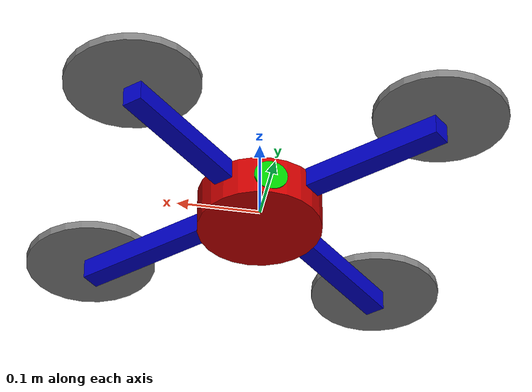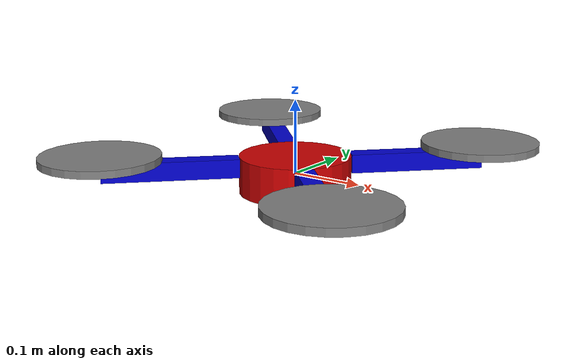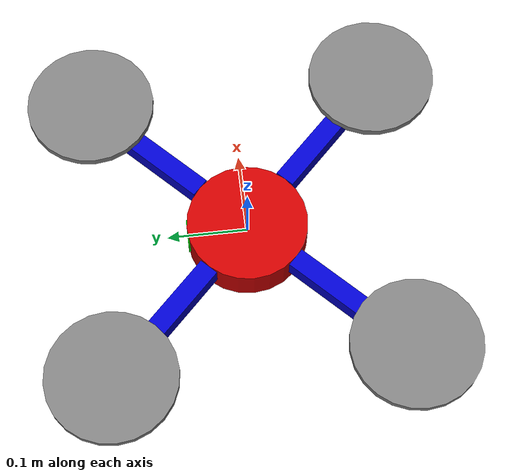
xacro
<?xml version="1.0"?>
<robot name="drone" xmlns:xacro="http://ros.org/wiki/xacro" xmlns:drake="http://mit.edu">

  <!-- File Conventions
    - mass (kg)
    - length (m)
    - inertia (kgm^2)
    -
  -->

  <!-- TO DO
    - update dimensions
    -
  -->

  <!-- #region Xacro Definitions -->
  <xacro:property name="pi" value="3.141592653589793"/>
  <xacro:property name="zero_origin" value = "0.0 0.0 0.0"/>
  <xacro:property name="zero_rpy" value = "0.0 0.0 0.0"/>

  <xacro:property name="base_radius" value = "${0.15/2}"/>
  <xacro:property name="base_length" value = "0.05"/>
  <xacro:property name="base_origin" value = "${zero_origin}"/>
  <xacro:property name="base_mass" value = "0.5"/>
  <xacro:property name="base_ixx" value = "${(base_mass*base_radius**2)/4 + (base_mass*base_length**2)/12}"/>
  <xacro:property name="base_iyy" value = "${(base_mass*base_radius**2)/4 + (base_mass*base_length**2)/12}"/>
  <xacro:property name="base_izz" value = "${(base_mass*base_radius**2)/2}"/>
  <xacro:property name="base_ixy" value = "0.0"/>
  <xacro:property name="base_ixz" value = "0.0"/>
  <xacro:property name="base_iyz" value = "0.0"/>

  <xacro:property name="arm_xsize" value = "${base_length/2}"/>
  <xacro:property name="arm_ysize" value = "${base_length/2}"/>
  <xacro:property name="arm_zsize" value = "0.18"/>
  <xacro:property name="arm_origin" value = "0.0 0.0 ${arm_zsize/2}"/>
  <xacro:property name="arm_mass" value = "0.05"/>
  <xacro:property name="arm_ixx" value = "${(arm_mass*(arm_ysize**2+arm_zsize**2))/12 + arm_mass*(arm_zsize/2)**2}"/>
  <xacro:property name="arm_iyy" value = "${(arm_mass*(arm_xsize**2+arm_zsize**2))/12 + arm_mass*(arm_zsize/2)**2}"/>
  <xacro:property name="arm_izz" value = "${(arm_mass*(arm_xsize**2+arm_ysize**2))/12}"/>
  <xacro:property name="arm_ixy" value = "0.0"/>
  <xacro:property name="arm_ixz" value = "0.0"/>
  <xacro:property name="arm_iyz" value = "0.0"/>
  <xacro:property name="arm_joint_zorigin" value = "${base_length/2-arm_ysize/2}"/>

  <xacro:property name="prop_radius" value = "0.08"/>
  <xacro:property name="prop_length" value = "0.01"/>
  <xacro:property name="prop_origin" value = "0.0 0.0 ${prop_length/2}"/>
  <xacro:property name="prop_mass" value = "0.001"/>
  <xacro:property name="prop_ixx" value = "${(prop_mass*prop_radius**2)/4 + (prop_mass*prop_length**2)/3}"/>
  <xacro:property name="prop_iyy" value = "${(prop_mass*prop_radius**2)/4 + (prop_mass*prop_length**2)/3}"/>
  <xacro:property name="prop_izz" value = "${(prop_mass*prop_radius**2)/2}"/>
  <xacro:property name="prop_ixy" value = "0.0"/>
  <xacro:property name="prop_ixz" value = "0.0"/>
  <xacro:property name="prop_iyz" value = "0.0"/>
  <xacro:property name="prop_joint_origin" value = "0.0 ${-arm_ysize/2} ${arm_zsize}"/>
  <xacro:property name="prop_joint_rpy" value = "${pi/2} 0.0 0.0"/>

  <xacro:property name="camera_radius" value = "0.02"/>
  <xacro:property name="camera_length" value = "0.01"/>
  <xacro:property name="camera_origin" value = "0.0 0.0 ${-camera_length/2}"/>
  <xacro:property name="camera_mass" value = "0.0"/>
  <xacro:property name="camera_ixx" value = "${(camera_mass*camera_radius**2)/4 + (camera_mass*camera_length**2)/12}"/>
  <xacro:property name="camera_iyy" value = "${(camera_mass*camera_radius**2)/4 + (camera_mass*camera_length**2)/12}"/>
  <xacro:property name="camera_izz" value = "${(camera_mass*camera_radius**2)/2}"/>
  <xacro:property name="camera_ixy" value = "0.0"/>
  <xacro:property name="camera_ixz" value = "0.0"/>
  <xacro:property name="camera_iyz" value = "0.0"/>
  <xacro:property name="camera_joint_origin" value = "0.0 ${base_radius} 0.0"/>
  <xacro:property name="camera_joint_rpy" value = "${-pi/2} 0.0 0.0"/>
  <!-- #endregion -->

  <!-- #region Material Definitions -->
  <material name="gray">
    <color rgba="0.5 0.5 0.5 1.0"/>
  </material>
  <material name="red">
    <color rgba="0.8 0.0 0.0 1.0"/>
  </material>
  <material name="green">
    <color rgba="0.0 0.8 0.0 1.0"/>
  </material>
  <material name="blue">
    <color rgba="0.0 0.0 0.8 1.0"/>
  </material>
  <!-- #endregion -->

  <!-- #region Drone Base -->
  <link name="drone_base">
    <inertial>
      <origin xyz="${zero_origin}" rpy="${zero_rpy}"/>
      <mass value="${base_mass}"/>
      <inertia ixx="${base_ixx}" ixy="${base_ixy}" ixz="${base_ixz}" iyy="${base_iyy}" iyz="${base_iyz}" izz="${base_izz}"/>
    </inertial>
    <visual>
      <origin xyz="${zero_origin}" rpy="${zero_rpy}"/>
      <geometry>
        <cylinder radius="${base_radius}" length="${base_length}"/>
      </geometry>
      <material name="red"/>
    </visual>
    <collision>
      <origin xyz="${zero_origin}" rpy="${zero_rpy}"/>
      <geometry>
        <cylinder radius="${base_radius}" length="${base_length}"/>
      </geometry>
    </collision>
  </link>
  <!-- #endregion -->

  <!-- #region Drone Arms -->
  <link name="drone_arm_1">
    <inertial>
      <origin xyz="${arm_origin}" rpy="${zero_rpy}"/>
      <mass value="${arm_mass}"/>
      <inertia ixx="${arm_ixx}" ixy="${arm_ixy}" ixz="${arm_ixz}" iyy="${arm_iyy}" iyz="${arm_iyz}" izz="${arm_izz}"/>
    </inertial>
    <visual>
      <origin xyz="${arm_origin}" rpy="${zero_rpy}"/>
      <geometry>
        <box size="${arm_xsize} ${arm_ysize} ${arm_zsize}"/>
      </geometry>
      <material name="blue"/>
    </visual>
    <collision>
      <origin xyz="${arm_origin}" rpy="${zero_rpy}"/>
      <geometry>
        <box size="${arm_xsize} ${arm_ysize} ${arm_zsize}"/>
      </geometry>
    </collision>
  </link>

  <link name="drone_arm_2">
    <inertial>
      <origin xyz="${arm_origin}" rpy="${zero_rpy}"/>
      <mass value="${arm_mass}"/>
      <inertia ixx="${arm_ixx}" ixy="${arm_ixy}" ixz="${arm_ixz}" iyy="${arm_iyy}" iyz="${arm_iyz}" izz="${arm_izz}"/>
    </inertial>
    <visual>
      <origin xyz="${arm_origin}" rpy="${zero_rpy}"/>
      <geometry>
        <box size="${arm_xsize} ${arm_ysize} ${arm_zsize}"/>
      </geometry>
      <material name="blue"/>
    </visual>
    <collision>
      <origin xyz="${arm_origin}" rpy="${zero_rpy}"/>
      <geometry>
        <box size="${arm_xsize} ${arm_ysize} ${arm_zsize}"/>
      </geometry>
    </collision>
  </link>

  <link name="drone_arm_3">
    <inertial>
      <origin xyz="${arm_origin}" rpy="${zero_rpy}"/>
      <mass value="${arm_mass}"/>
      <inertia ixx="${arm_ixx}" ixy="${arm_ixy}" ixz="${arm_ixz}" iyy="${arm_iyy}" iyz="${arm_iyz}" izz="${arm_izz}"/>
    </inertial>
    <visual>
      <origin xyz="${arm_origin}" rpy="${zero_rpy}"/>
      <geometry>
        <box size="${arm_xsize} ${arm_ysize} ${arm_zsize}"/>
      </geometry>
      <material name="blue"/>
    </visual>
    <collision>
      <origin xyz="${arm_origin}" rpy="${zero_rpy}"/>
      <geometry>
        <box size="${arm_xsize} ${arm_ysize} ${arm_zsize}"/>
      </geometry>
    </collision>
  </link>

  <link name="drone_arm_4">
    <inertial>
      <origin xyz="${arm_origin}" rpy="${zero_rpy}"/>
      <mass value="${arm_mass}"/>
      <inertia ixx="${arm_ixx}" ixy="${arm_ixy}" ixz="${arm_ixz}" iyy="${arm_iyy}" iyz="${arm_iyz}" izz="${arm_izz}"/>
    </inertial>
    <visual>
      <origin xyz="${arm_origin}" rpy="${zero_rpy}"/>
      <geometry>
        <box size="${arm_xsize} ${arm_ysize} ${arm_zsize}"/>
      </geometry>
      <material name="blue"/>
    </visual>
    <collision>
      <origin xyz="${arm_origin}" rpy="${zero_rpy}"/>
      <geometry>
        <box size="${arm_xsize} ${arm_ysize} ${arm_zsize}"/>
      </geometry>
    </collision>
  </link>
  <!-- #endregion -->

  <!-- #region Drone Props -->
  <link name="drone_prop_1">
    <inertial>
      <origin xyz="${prop_origin}" rpy="${zero_rpy}"/>
      <mass value="${prop_mass}"/>
      <inertia ixx="${prop_ixx}" ixy="${prop_ixy}" ixz="${prop_ixz}" iyy="${prop_iyy}" iyz="${prop_iyz}" izz="${prop_izz}"/>
    </inertial>
    <visual>
      <origin xyz="${prop_origin}" rpy="${zero_rpy}"/>
      <geometry>
        <cylinder radius="${prop_radius}" length="${prop_length}"/>
      </geometry>
      <material name="gray"/>
    </visual>
    <collision>
      <origin xyz="${prop_origin}" rpy="${zero_rpy}"/>
      <geometry>
        <cylinder radius="${prop_radius}" length="${prop_length}"/>
      </geometry>
    </collision>
  </link>

  <link name="drone_prop_2">
    <inertial>
      <origin xyz="${prop_origin}" rpy="${zero_rpy}"/>
      <mass value="${prop_mass}"/>
      <inertia ixx="${prop_ixx}" ixy="${prop_ixy}" ixz="${prop_ixz}" iyy="${prop_iyy}" iyz="${prop_iyz}" izz="${prop_izz}"/>
    </inertial>
    <visual>
      <origin xyz="${prop_origin}" rpy="${zero_rpy}"/>
      <geometry>
        <cylinder radius="${prop_radius}" length="${prop_length}"/>
      </geometry>
      <material name="gray"/>
    </visual>
    <collision>
      <origin xyz="${prop_origin}" rpy="${zero_rpy}"/>
      <geometry>
        <cylinder radius="${prop_radius}" length="${prop_length}"/>
      </geometry>
    </collision>
  </link>

  <link name="drone_prop_3">
    <inertial>
      <origin xyz="${prop_origin}" rpy="${zero_rpy}"/>
      <mass value="${prop_mass}"/>
      <inertia ixx="${prop_ixx}" ixy="${prop_ixy}" ixz="${prop_ixz}" iyy="${prop_iyy}" iyz="${prop_iyz}" izz="${prop_izz}"/>
    </inertial>
    <visual>
      <origin xyz="${prop_origin}" rpy="${zero_rpy}"/>
      <geometry>
        <cylinder radius="${prop_radius}" length="${prop_length}"/>
      </geometry>
      <material name="gray"/>
    </visual>
    <collision>
      <origin xyz="${prop_origin}" rpy="${zero_rpy}"/>
      <geometry>
        <cylinder radius="${prop_radius}" length="${prop_length}"/>
      </geometry>
    </collision>
  </link>

  <link name="drone_prop_4">
    <inertial>
      <origin xyz="${prop_origin}" rpy="${zero_rpy}"/>
      <mass value="${prop_mass}"/>
      <inertia ixx="${prop_ixx}" ixy="${prop_ixy}" ixz="${prop_ixz}" iyy="${prop_iyy}" iyz="${prop_iyz}" izz="${prop_izz}"/>
    </inertial>
    <visual>
      <origin xyz="${prop_origin}" rpy="${zero_rpy}"/>
      <geometry>
        <cylinder radius="${prop_radius}" length="${prop_length}"/>
      </geometry>
      <material name="gray"/>
    </visual>
    <collision>
      <origin xyz="${prop_origin}" rpy="${zero_rpy}"/>
      <geometry>
        <cylinder radius="${prop_radius}" length="${prop_length}"/>
      </geometry>
    </collision>
  </link>
  <!-- #endregion -->

  <!-- #region Drone Camera -->
   <link name="drone_camera">
    <inertial>
      <origin xyz="${camera_origin}" rpy="${zero_rpy}"/>
      <mass value="${camera_mass}"/>
      <inertia ixx="${camera_ixx}" ixy="${camera_ixy}" ixz="${camera_ixz}" iyy="${camera_iyy}" iyz="${camera_iyz}" izz="${camera_izz}"/>
    </inertial>
    <visual>
      <origin xyz="${camera_origin}" rpy="${zero_rpy}"/>
      <geometry>
        <cylinder radius="${camera_radius}" length="${camera_length}"/>
      </geometry>
      <material name="green"/>
    </visual>
    <collision>
      <origin xyz="${camera_origin}" rpy="${zero_rpy}"/>
      <geometry>
        <cylinder radius="${camera_radius}" length="${camera_length}"/>
      </geometry>
    </collision>
  </link>

  <!-- #region Arm Joints -->
  <joint name="base_to_arm_1" type="fixed">
    <parent link="drone_base"/>
    <child link="drone_arm_1"/>
    <origin xyz="${base_radius*cos(pi/4)} ${base_radius*sin(pi/4)} ${arm_joint_zorigin}" rpy="${-pi/2} 0.0 ${-pi/4+0*pi/2}"/>
  </joint>

  <joint name="base_to_arm_2" type="fixed">
    <parent link="drone_base"/>
    <child link="drone_arm_2"/>
    <origin xyz="${base_radius*cos(3*pi/4)} ${base_radius*sin(3*pi/4)} ${arm_joint_zorigin}" rpy="${-pi/2} 0.0 ${-pi/4+pi/2}"/>
  </joint>

  <joint name="base_to_arm_3" type="fixed">
    <parent link="drone_base"/>
    <child link="drone_arm_3"/>
    <origin xyz="${base_radius*cos(5*pi/4)} ${base_radius*sin(5*pi/4)} ${arm_joint_zorigin}" rpy="${-pi/2} 0.0 ${-pi/4+2*pi/2}"/>
  </joint>

  <joint name="base_to_arm_4" type="fixed">
    <parent link="drone_base"/>
    <child link="drone_arm_4"/>
    <origin xyz="${base_radius*cos(7*pi/4)} ${base_radius*sin(7*pi/4)} ${arm_joint_zorigin}" rpy="${-pi/2} 0.0 ${-pi/4+3*pi/2}"/>
  </joint>
  <!-- #endregion -->

  <!-- #region Prop Joints -->
  <joint name="arm_1_to_prop_1" type="fixed">
    <parent link="drone_arm_1"/>
    <child link="drone_prop_1"/>
    <origin xyz="${prop_joint_origin}" rpy="${prop_joint_rpy}"/>
  </joint>

  <joint name="arm_2_to_prop_2" type="fixed">
    <parent link="drone_arm_2"/>
    <child link="drone_prop_2"/>
    <origin xyz="${prop_joint_origin}" rpy="${prop_joint_rpy}"/>
  </joint>

  <joint name="arm_3_to_prop_3" type="fixed">
    <parent link="drone_arm_3"/>
    <child link="drone_prop_3"/>
    <origin xyz="${prop_joint_origin}" rpy="${prop_joint_rpy}"/>
  </joint>

  <joint name="arm_4_to_prop_4" type="fixed">
    <parent link="drone_arm_4"/>
    <child link="drone_prop_4"/>
    <origin xyz="${prop_joint_origin}" rpy="${prop_joint_rpy}"/>
  </joint>
  <!-- #endregion -->

  <!-- #region Prop Joints -->
  <joint name="base_to_camera" type="fixed">
    <parent link="drone_base"/>
    <child link="drone_camera"/>
    <origin xyz="${camera_joint_origin}" rpy="${camera_joint_rpy}"/>
  </joint>
  <!-- #endregion -->

  <!-- #region Drake Commands -->
  <drake:collision_filter_group name="self_collision_ignore">
    <drake:member link="drone_base"/>
    <drake:member link="drone_arm_1"/>
    <drake:member link="drone_arm_2"/>
    <drake:member link="drone_arm_3"/>
    <drake:member link="drone_arm_4"/>
    <drake:member link="drone_prop_1"/>
    <drake:member link="drone_prop_2"/>
    <drake:member link="drone_prop_3"/>
    <drake:member link="drone_prop_4"/>
    <drake:member link="drone_camera"/>
    <drake:ignored_collision_filter_group name="self_collision_ignore"/>
  </drake:collision_filter_group>
  <!-- #endregion -->

</robot>
